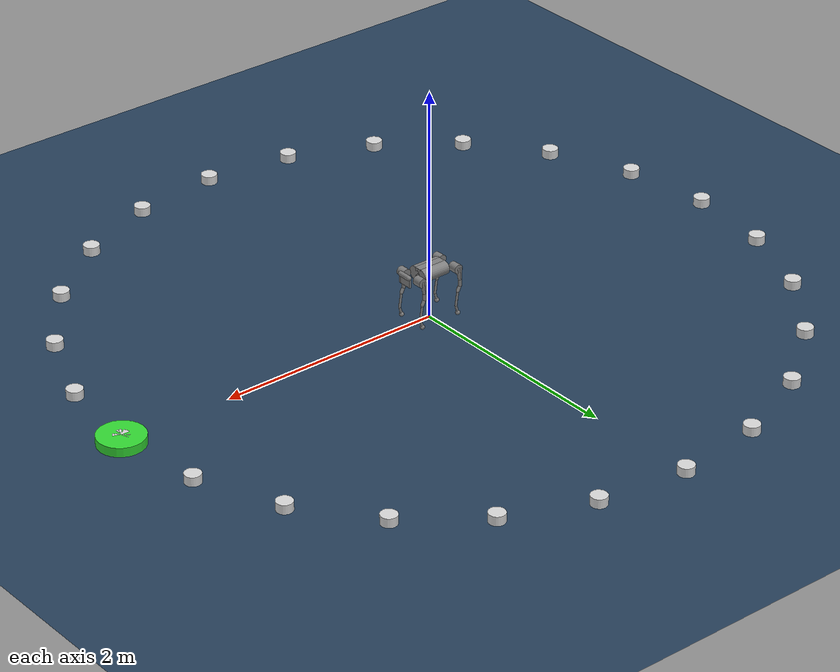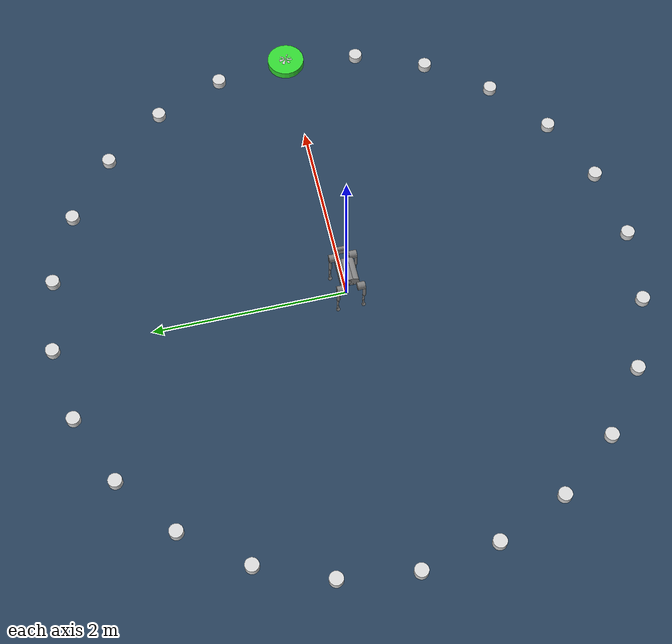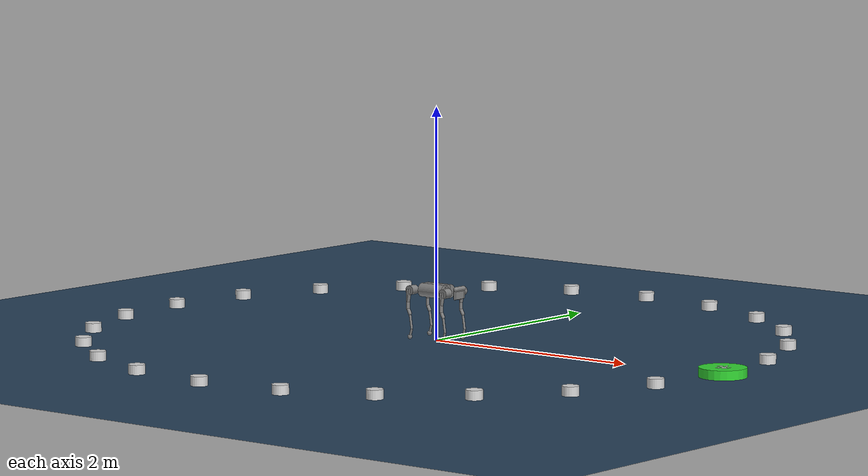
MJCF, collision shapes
<mujoco model="a1 scene">
  <include file="a1.xml"/>

  <statistic center="0 0 0.5" extent="5"/>

  <visual>
    <headlight diffuse="0.6 0.6 0.6" ambient="0.3 0.3 0.3" specular="0 0 0"/>
    <rgba haze="0.15 0.25 0.35 1"/>
    <global azimuth="120" elevation="-20"/>
  </visual>

  <asset>
    <texture type="skybox" builtin="gradient" rgb1="0.3 0.5 0.7" rgb2="0 0 0" width="512" height="3072"/>
    <texture type="2d" name="groundplane" builtin="checker" mark="edge" rgb1="0.2 0.3 0.4" rgb2="0.1 0.2 0.3"
      markrgb="0.8 0.8 0.8" width="300" height="300"/>
    <material name="groundplane" texture="groundplane" texuniform="true" texrepeat="5 5" reflectance="0.2"/>
<material name="ring"        rgba="0.85 0.85 0.85 1"/>
    <material name="goal"        rgba="0.2  0.85 0.2  1"/>
  </asset>

  <worldbody>
    <light pos="0 0 6" dir="0 0 -1" directional="true"/>
    <geom name="floor" size="0 0 0.05" type="plane" material="groundplane"/>

    <!-- Ring markers — 24 cylinders every 15° at radius 3 m, non-colliding -->
    <geom type="cylinder" pos=" 3.000  0.000 0.04" size="0.07 0.04" material="ring" contype="0" conaffinity="0"/>
    <geom type="cylinder" pos=" 2.898  0.776 0.04" size="0.07 0.04" material="ring" contype="0" conaffinity="0"/>
    <geom type="cylinder" pos=" 2.598  1.500 0.04" size="0.07 0.04" material="ring" contype="0" conaffinity="0"/>
    <geom type="cylinder" pos=" 2.121  2.121 0.04" size="0.07 0.04" material="ring" contype="0" conaffinity="0"/>
    <geom type="cylinder" pos=" 1.500  2.598 0.04" size="0.07 0.04" material="ring" contype="0" conaffinity="0"/>
    <geom type="cylinder" pos=" 0.776  2.898 0.04" size="0.07 0.04" material="ring" contype="0" conaffinity="0"/>
    <geom type="cylinder" pos=" 0.000  3.000 0.04" size="0.07 0.04" material="ring" contype="0" conaffinity="0"/>
    <geom type="cylinder" pos="-0.776  2.898 0.04" size="0.07 0.04" material="ring" contype="0" conaffinity="0"/>
    <geom type="cylinder" pos="-1.500  2.598 0.04" size="0.07 0.04" material="ring" contype="0" conaffinity="0"/>
    <geom type="cylinder" pos="-2.121  2.121 0.04" size="0.07 0.04" material="ring" contype="0" conaffinity="0"/>
    <geom type="cylinder" pos="-2.598  1.500 0.04" size="0.07 0.04" material="ring" contype="0" conaffinity="0"/>
    <geom type="cylinder" pos="-2.898  0.776 0.04" size="0.07 0.04" material="ring" contype="0" conaffinity="0"/>
    <geom type="cylinder" pos="-3.000  0.000 0.04" size="0.07 0.04" material="ring" contype="0" conaffinity="0"/>
    <geom type="cylinder" pos="-2.898 -0.776 0.04" size="0.07 0.04" material="ring" contype="0" conaffinity="0"/>
    <geom type="cylinder" pos="-2.598 -1.500 0.04" size="0.07 0.04" material="ring" contype="0" conaffinity="0"/>
    <geom type="cylinder" pos="-2.121 -2.121 0.04" size="0.07 0.04" material="ring" contype="0" conaffinity="0"/>
    <geom type="cylinder" pos="-1.500 -2.598 0.04" size="0.07 0.04" material="ring" contype="0" conaffinity="0"/>
    <geom type="cylinder" pos="-0.776 -2.898 0.04" size="0.07 0.04" material="ring" contype="0" conaffinity="0"/>
    <geom type="cylinder" pos=" 0.000 -3.000 0.04" size="0.07 0.04" material="ring" contype="0" conaffinity="0"/>
    <geom type="cylinder" pos=" 0.776 -2.898 0.04" size="0.07 0.04" material="ring" contype="0" conaffinity="0"/>
    <geom type="cylinder" pos=" 1.500 -2.598 0.04" size="0.07 0.04" material="ring" contype="0" conaffinity="0"/>
    <geom type="cylinder" pos=" 2.121 -2.121 0.04" size="0.07 0.04" material="ring" contype="0" conaffinity="0"/>
    <geom type="cylinder" pos=" 2.598 -1.500 0.04" size="0.07 0.04" material="ring" contype="0" conaffinity="0"/>
    <geom type="cylinder" pos=" 2.898 -0.776 0.04" size="0.07 0.04" material="ring" contype="0" conaffinity="0"/>

    <!-- Goal marker — mocap body so sim.py can move it to any ring position -->
    <body name="goal_marker" mocap="true" pos="3.0 0.0 0.04">
      <geom type="cylinder" size="0.2 0.04" material="goal" contype="0" conaffinity="0"/>
    </body>
  </worldbody>
</mujoco>

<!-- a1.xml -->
<mujoco model="a1">
  <compiler angle="radian" meshdir="assets" texturedir="assets" autolimits="true"/>

  <option cone="elliptic" impratio="100"/>

  <default>
    <default class="a1">
      <geom friction="0.6" margin="0.001"/>
      <joint axis="0 1 0" damping="2" armature="0.01" frictionloss="0.2"/>
      <position kp="100" forcerange="-33.5 33.5"/>
      <default class="abduction">
        <joint axis="1 0 0" damping="1" range="-0.802851 0.802851"/>
        <position ctrlrange="-0.802851 0.802851"/>
      </default>
      <default class="hip">
        <joint range="-1.0472 4.18879"/>
        <position ctrlrange="-1.0472 4.18879"/>
      </default>
      <default class="knee">
        <joint range="-2.69653 -0.916298"/>
        <position ctrlrange="-2.69653 -0.916298"/>
      </default>
      <default class="visual">
        <geom type="mesh" contype="0" conaffinity="0" group="2" material="dark"/>
      </default>
      <default class="collision">
        <geom group="3" type="capsule"/>
        <default class="hip_left">
          <geom size="0.04 0.04" quat="1 1 0 0" type="cylinder" pos="0 0.055 0"/>
        </default>
        <default class="hip_right">
          <geom size="0.04 0.04" quat="1 1 0 0" type="cylinder" pos="0 -0.055 0"/>
        </default>
        <default class="thigh1">
          <geom size="0.015" fromto="-0.02 0 0 -0.02 0 -0.16"/>
        </default>
        <default class="thigh2">
          <geom size="0.015" fromto="0 0 0 -0.02 0 -0.1"/>
        </default>
        <default class="thigh3">
          <geom size="0.015" fromto="-0.02 0 -0.16 0 0 -0.2"/>
        </default>
        <default class="calf1">
          <geom size="0.01" fromto="0 0 0 0.02 0 -0.13"/>
        </default>
        <default class="calf2">
          <geom size="0.01" fromto="0.02 0 -0.13 0 0 -0.2"/>
        </default>
        <default class="foot">
          <geom type="sphere" size="0.02" pos="0 0 -0.2" priority="1" solimp="0.015 1 0.02" condim="6"
            friction="0.8 0.02 0.01"/>
        </default>
      </default>
    </default>
  </default>

  <asset>
    <material name="dark" specular="0" shininess="0.25" rgba="0.2 0.2 0.2 1"/>
    <texture type="2d" name="trunk_A1" file="trunk_A1.png"/>
    <material name="carbonfibre" texture="trunk_A1" specular="0" shininess="0.25"/>

    <mesh class="a1" file="calf.obj"/>
    <mesh class="a1" file="hip.obj"/>
    <mesh class="a1" file="thigh.obj"/>
    <mesh class="a1" file="thigh_mirror.obj"/>
    <mesh class="a1" file="trunk.obj"/>
  </asset>

  <worldbody>
    <light name="spotlight" mode="targetbodycom" target="trunk" pos="0 -1 2"/>
    <body name="trunk" pos="0 0 0.43" childclass="a1">
      <freejoint/>
      <inertial mass="4.713" pos="0 0.0041 -0.0005"
        fullinertia="0.0158533 0.0377999 0.0456542 -3.66e-05 -6.11e-05 -2.75e-05"/>
      <geom class="visual" mesh="trunk" material="carbonfibre"/>
      <geom class="collision" size="0.125 0.04 0.057" type="box"/>
      <geom class="collision" quat="1 0 1 0" pos="0 -0.04 0" size="0.058 0.125" type="cylinder"/>
      <geom class="collision" quat="1 0 1 0" pos="0 +0.04 0" size="0.058 0.125" type="cylinder"/>
      <geom class="collision" pos="0.25 0 0" size="0.005 0.06 0.05" type="box"/>
      <geom class="collision" pos="0.25 0.06 -0.01" size="0.009 0.035"/>
      <geom class="collision" pos="0.25 -0.06 -0.01" size="0.009 0.035"/>
      <geom class="collision" pos="0.25 0 -0.05" size="0.005 0.06" quat="1 1 0 0"/>
      <geom class="collision" pos="0.255 0 0.0355" size="0.021 0.052" quat="1 1 0 0"/>

      <body name="FR_hip" pos="0.183 -0.047 0">
        <inertial mass="0.696" pos="-0.003311 -0.000635 3.1e-05" quat="0.507528 0.506268 0.491507 0.494499"
          diaginertia="0.000807752 0.00055293 0.000468983"/>
        <joint class="abduction" name="FR_hip_joint"/>
        <geom class="visual" mesh="hip" quat="0 1 0 0"/>
        <geom class="hip_right"/>
        <body name="FR_thigh" pos="0 -0.08505 0">
          <inertial mass="1.013" pos="-0.003237 0.022327 -0.027326" quat="0.999125 -0.00256393 -0.0409531 -0.00806091"
            diaginertia="0.00555739 0.00513936 0.00133944"/>
          <joint class="hip" name="FR_thigh_joint"/>
          <geom class="visual" mesh="thigh_mirror"/>
          <geom class="thigh1"/>
          <geom class="thigh2"/>
          <geom class="thigh3"/>
          <body name="FR_calf" pos="0 0 -0.2">
            <inertial mass="0.226" pos="0.00472659 0 -0.131975" quat="0.706886 0.017653 0.017653 0.706886"
              diaginertia="0.00340344 0.00339393 3.54834e-05"/>
            <joint class="knee" name="FR_calf_joint"/>
            <geom class="visual" mesh="calf"/>
            <geom class="calf1"/>
            <geom class="calf2"/>
            <geom class="foot"/>
          </body>
        </body>
      </body>
      <body name="FL_hip" pos="0.183 0.047 0">
        <inertial mass="0.696" pos="-0.003311 0.000635 3.1e-05" quat="0.494499 0.491507 0.506268 0.507528"
          diaginertia="0.000807752 0.00055293 0.000468983"/>
        <joint class="abduction" name="FL_hip_joint"/>
        <geom class="visual" mesh="hip"/>
        <geom class="hip_left"/>
        <body name="FL_thigh" pos="0 0.08505 0">
          <inertial mass="1.013" pos="-0.003237 -0.022327 -0.027326" quat="0.999125 0.00256393 -0.0409531 0.00806091"
            diaginertia="0.00555739 0.00513936 0.00133944"/>
          <joint class="hip" name="FL_thigh_joint"/>
          <geom class="visual" mesh="thigh"/>
          <geom class="thigh1"/>
          <geom class="thigh2"/>
          <geom class="thigh3"/>
          <body name="FL_calf" pos="0 0 -0.2">
            <inertial mass="0.226" pos="0.00472659 0 -0.131975" quat="0.706886 0.017653 0.017653 0.706886"
              diaginertia="0.00340344 0.00339393 3.54834e-05"/>
            <joint class="knee" name="FL_calf_joint"/>
            <geom class="visual" mesh="calf"/>
            <geom class="calf1"/>
            <geom class="calf2"/>
            <geom class="foot"/>
          </body>
        </body>
      </body>
      <body name="RR_hip" pos="-0.183 -0.047 0">
        <inertial mass="0.696" pos="0.003311 -0.000635 3.1e-05" quat="0.491507 0.494499 0.507528 0.506268"
          diaginertia="0.000807752 0.00055293 0.000468983"/>
        <joint class="abduction" name="RR_hip_joint"/>
        <geom class="visual" quat="0 0 0 -1" mesh="hip"/>
        <geom class="hip_right"/>
        <body name="RR_thigh" pos="0 -0.08505 0">
          <inertial mass="1.013" pos="-0.003237 0.022327 -0.027326" quat="0.999125 -0.00256393 -0.0409531 -0.00806091"
            diaginertia="0.00555739 0.00513936 0.00133944"/>
          <joint class="hip" name="RR_thigh_joint"/>
          <geom class="visual" mesh="thigh_mirror"/>
          <geom class="thigh1"/>
          <geom class="thigh2"/>
          <geom class="thigh3"/>
          <body name="RR_calf" pos="0 0 -0.2">
            <inertial mass="0.226" pos="0.00472659 0 -0.131975" quat="0.706886 0.017653 0.017653 0.706886"
              diaginertia="0.00340344 0.00339393 3.54834e-05"/>
            <joint class="knee" name="RR_calf_joint"/>
            <geom class="visual" mesh="calf"/>
            <geom class="calf1"/>
            <geom class="calf2"/>
            <geom class="foot"/>
          </body>
        </body>
      </body>
      <body name="RL_hip" pos="-0.183 0.047 0">
        <inertial mass="0.696" pos="0.003311 0.000635 3.1e-05" quat="0.506268 0.507528 0.494499 0.491507"
          diaginertia="0.000807752 0.00055293 0.000468983"/>
        <joint class="abduction" name="RL_hip_joint"/>
        <geom class="visual" quat="0 0 1 0" mesh="hip"/>
        <geom class="hip_left"/>
        <body name="RL_thigh" pos="0 0.08505 0">
          <inertial mass="1.013" pos="-0.003237 -0.022327 -0.027326" quat="0.999125 0.00256393 -0.0409531 0.00806091"
            diaginertia="0.00555739 0.00513936 0.00133944"/>
          <joint class="hip" name="RL_thigh_joint"/>
          <geom class="visual" mesh="thigh"/>
          <geom class="thigh1"/>
          <geom class="thigh2"/>
          <geom class="thigh3"/>
          <body name="RL_calf" pos="0 0 -0.2">
            <inertial mass="0.226" pos="0.00472659 0 -0.131975" quat="0.706886 0.017653 0.017653 0.706886"
              diaginertia="0.00340344 0.00339393 3.54834e-05"/>
            <joint class="knee" name="RL_calf_joint"/>
            <geom class="visual" mesh="calf"/>
            <geom class="calf1"/>
            <geom class="calf2"/>
            <geom class="foot"/>
          </body>
        </body>
      </body>
    </body>
  </worldbody>

  <actuator>
    <position class="abduction" name="FR_hip" joint="FR_hip_joint"/>
    <position class="hip" name="FR_thigh" joint="FR_thigh_joint"/>
    <position class="knee" name="FR_calf" joint="FR_calf_joint"/>
    <position class="abduction" name="FL_hip" joint="FL_hip_joint"/>
    <position class="hip" name="FL_thigh" joint="FL_thigh_joint"/>
    <position class="knee" name="FL_calf" joint="FL_calf_joint"/>
    <position class="abduction" name="RR_hip" joint="RR_hip_joint"/>
    <position class="hip" name="RR_thigh" joint="RR_thigh_joint"/>
    <position class="knee" name="RR_calf" joint="RR_calf_joint"/>
    <position class="abduction" name="RL_hip" joint="RL_hip_joint"/>
    <position class="hip" name="RL_thigh" joint="RL_thigh_joint"/>
    <position class="knee" name="RL_calf" joint="RL_calf_joint"/>
  </actuator>

  <keyframe>
    <key name="home" qpos="0 0 0.27 1 0 0 0 0 0.9 -1.8 0 0.9 -1.8 0 0.9 -1.8 0 0.9 -1.8"
      ctrl="0 0.9 -1.8 0 0.9 -1.8 0 0.9 -1.8 0 0.9 -1.8"/>
  </keyframe>
</mujoco>
